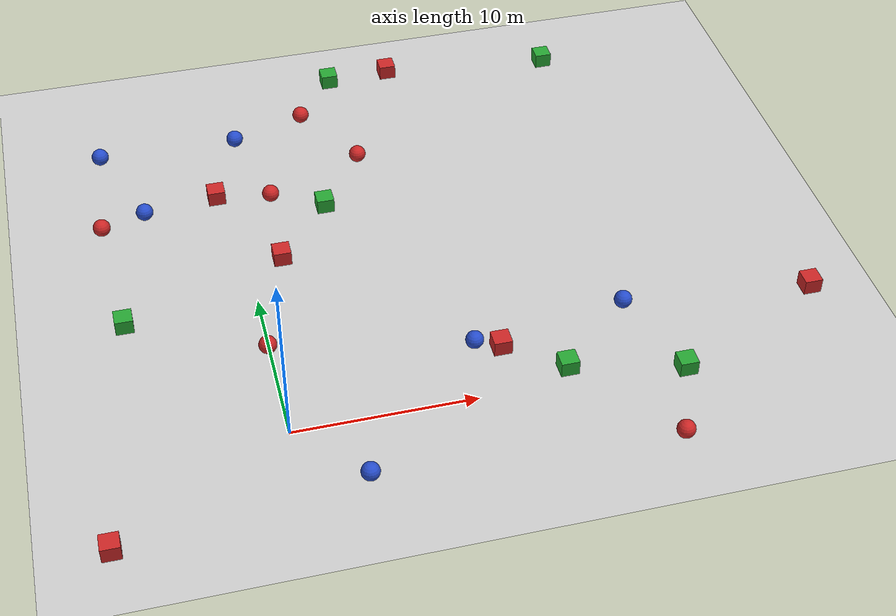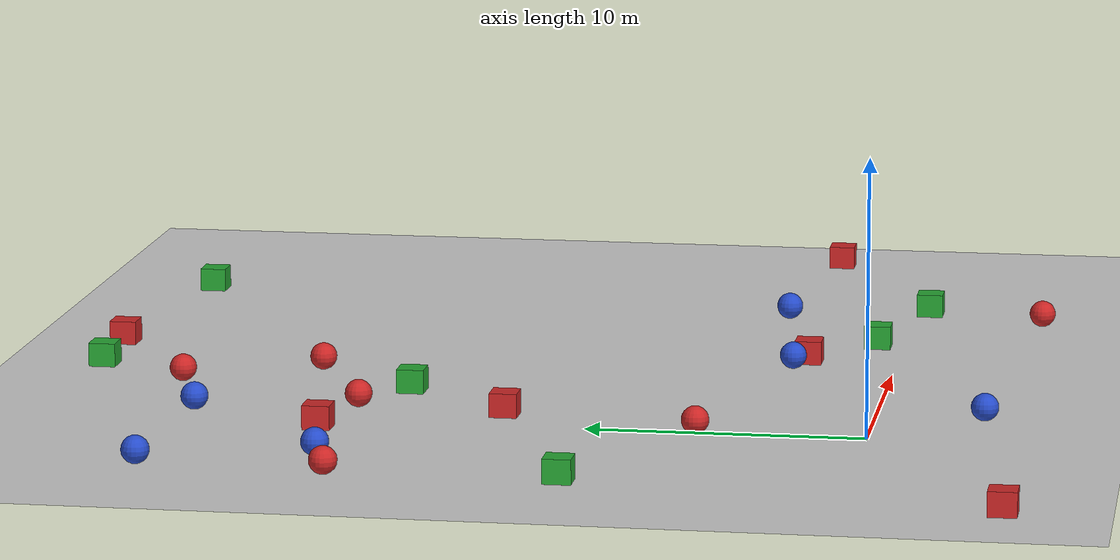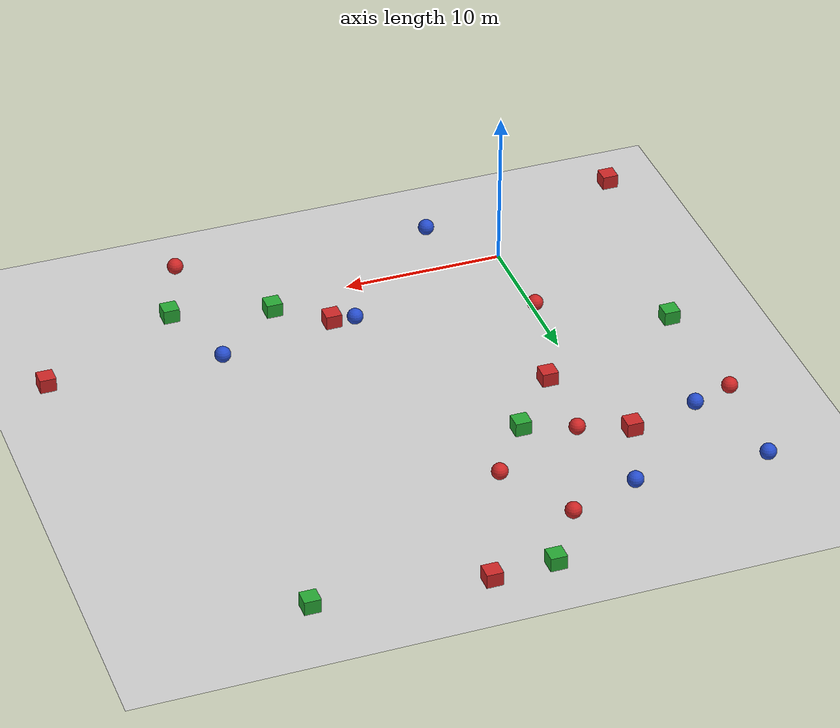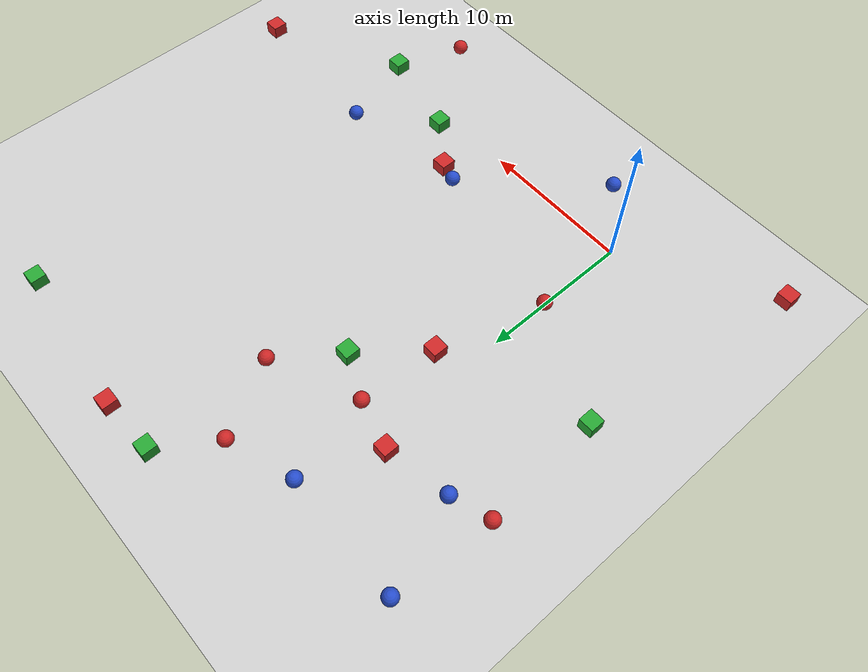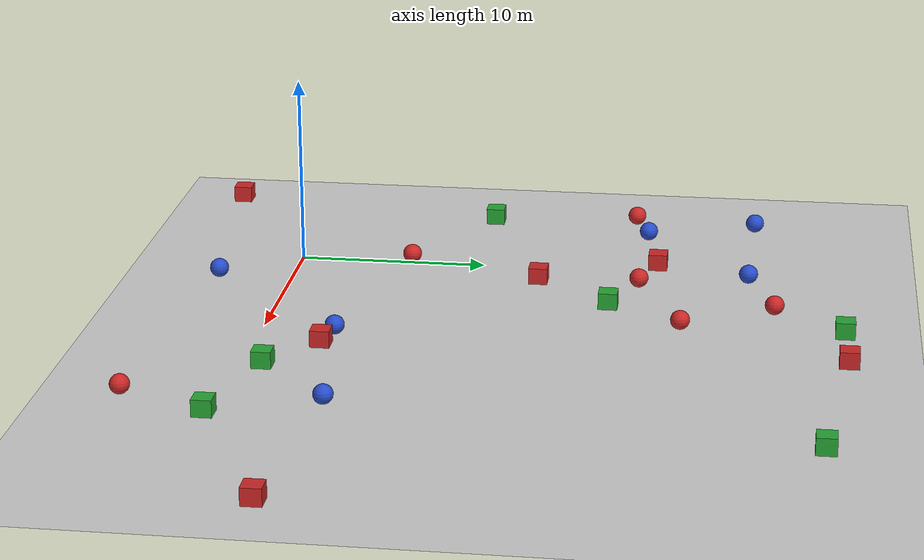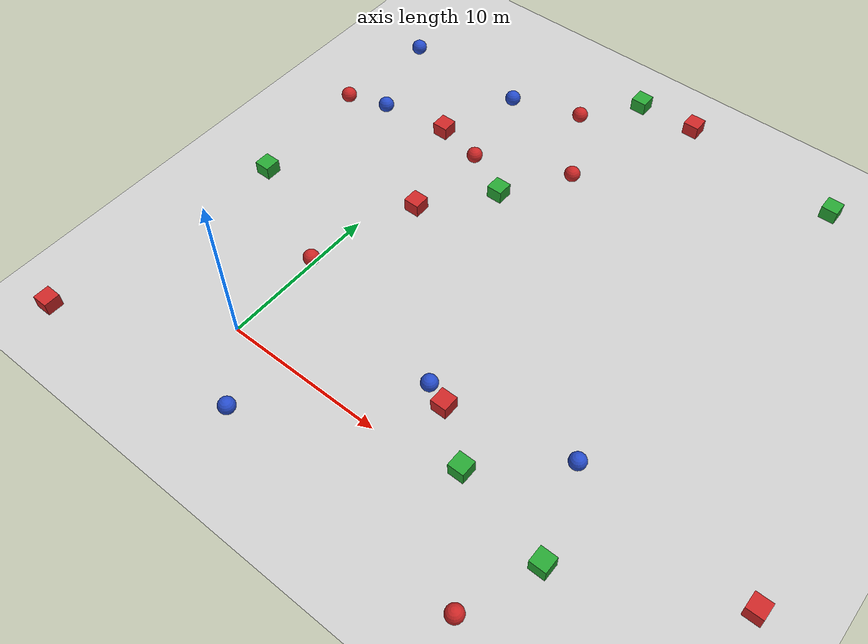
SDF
<sdf version="1.6">
 <world name="default">
  <light name="sun" type="directional">
   <pose>0 0 10 0 -0 0</pose>
   <diffuse>0.8 0.8 0.8 1</diffuse>
   <specular>0.1 0.1 0.1 1</specular>
   <attenuation>
    <range>1000</range>
    <constant>0.9</constant>
    <linear>0.01</linear>
    <quadratic>0.001</quadratic>
   </attenuation>
   <direction>-0.5 0.5 -1</direction>
  </light>
  <model name="ground_plane">
   <static>1</static>
   <link name="link">
    <collision name="collision">
     <geometry><plane><normal>0 0 1</normal><size>100 100</size></plane></geometry>
     <surface><friction><ode><mu>100</mu><mu2>50</mu2></ode></friction></surface>
    </collision>
    <visual name="visual">
     <cast_shadows>0</cast_shadows>
     <geometry><plane><normal>0 0 1</normal><size>100 100</size></plane></geometry>
     <material>
      <script><uri>file://media/materials/scripts/gazebo.material</uri><name>Gazebo/Grey</name></script>
     </material>
    </visual>
   </link>
  </model>
  <model name="unit_box_red_6">
   <pose>-0.972124179027 19.3967447052 0.329741 0 -0 0</pose>
   <link name="link">
    <inertial>
     <mass>1</mass>
     <inertia>
      <ixx>0.166667</ixx>
      <ixy>0</ixy>
      <ixz>0</ixz>
      <iyy>0.166667</iyy>
      <iyz>0</iyz>
      <izz>0.166667</izz>
     </inertia>
    </inertial>
    <collision name="collision"><geometry><box><size>1 1 0.999999</size></box></geometry></collision>
    <visual name="visual">
     <geometry><box><size>1 1 0.999999</size></box></geometry>
     <material>
      <script><name>Gazebo/Red</name><uri>file://media/materials/scripts/gazebo.material</uri></script>
     </material>
    </visual>
   </link>
  </model>
  <model name="unit_box_red_5">
   <pose>-9.47443882149 -5.40753129117 0.329741 0 -0 0</pose>
   <link name="link">
    <inertial>
     <mass>1</mass>
     <inertia>
      <ixx>0.166667</ixx>
      <ixy>0</ixy>
      <ixz>0</ixz>
      <iyy>0.166667</iyy>
      <iyz>0</iyz>
      <izz>0.166667</izz>
     </inertia>
    </inertial>
    <collision name="collision"><geometry><box><size>1 1 0.999999</size></box></geometry></collision>
    <visual name="visual">
     <geometry><box><size>1 1 0.999999</size></box></geometry>
     <material>
      <script><name>Gazebo/Red</name><uri>file://media/materials/scripts/gazebo.material</uri></script>
     </material>
    </visual>
   </link>
  </model>
  <model name="unit_box_red_4">
   <pose>30.0440862557 3.83223145465 0.329741 0 -0 0</pose>
   <link name="link">
    <inertial>
     <mass>1</mass>
     <inertia>
      <ixx>0.166667</ixx>
      <ixy>0</ixy>
      <ixz>0</ixz>
      <iyy>0.166667</iyy>
      <iyz>0</iyz>
      <izz>0.166667</izz>
     </inertia>
    </inertial>
    <collision name="collision"><geometry><box><size>1 1 0.999999</size></box></geometry></collision>
    <visual name="visual">
     <geometry><box><size>1 1 0.999999</size></box></geometry>
     <material>
      <script><name>Gazebo/Red</name><uri>file://media/materials/scripts/gazebo.material</uri></script>
     </material>
    </visual>
   </link>
  </model>
  <model name="unit_box_red_3">
   <pose>11.5799298118 29.5573891644 0.329741 0 -0 0</pose>
   <link name="link">
    <inertial>
     <mass>1</mass>
     <inertia>
      <ixx>0.166667</ixx>
      <ixy>0</ixy>
      <ixz>0</ixz>
      <iyy>0.166667</iyy>
      <iyz>0</iyz>
      <izz>0.166667</izz>
     </inertia>
    </inertial>
    <collision name="collision"><geometry><box><size>1 1 0.999999</size></box></geometry></collision>
    <visual name="visual">
     <geometry><box><size>1 1 0.999999</size></box></geometry>
     <material>
      <script><name>Gazebo/Red</name><uri>file://media/materials/scripts/gazebo.material</uri></script>
     </material>
    </visual>
   </link>
  </model>
  <model name="unit_box_red_2">
   <pose>1.88740144959 13.1705293032 0.329741 0 -0 0</pose>
   <link name="link">
    <inertial>
     <mass>1</mass>
     <inertia>
      <ixx>0.166667</ixx>
      <ixy>0</ixy>
      <ixz>0</ixz>
      <iyy>0.166667</iyy>
      <iyz>0</iyz>
      <izz>0.166667</izz>
     </inertia>
    </inertial>
    <collision name="collision"><geometry><box><size>1 1 0.999999</size></box></geometry></collision>
    <visual name="visual">
     <geometry><box><size>1 1 0.999999</size></box></geometry>
     <material>
      <script><name>Gazebo/Red</name><uri>file://media/materials/scripts/gazebo.material</uri></script>
     </material>
    </visual>
   </link>
  </model>
  <model name="unit_box_red_1">
   <pose>12.0660012438 3.31392304955 0.329741 0 -0 0</pose>
   <link name="link">
    <inertial>
     <mass>1</mass>
     <inertia>
      <ixx>0.166667</ixx>
      <ixy>0</ixy>
      <ixz>0</ixz>
      <iyy>0.166667</iyy>
      <iyz>0</iyz>
      <izz>0.166667</izz>
     </inertia>
    </inertial>
    <collision name="collision"><geometry><box><size>1 1 0.999999</size></box></geometry></collision>
    <visual name="visual">
     <geometry><box><size>1 1 0.999999</size></box></geometry>
     <material>
      <script><name>Gazebo/Red</name><uri>file://media/materials/scripts/gazebo.material</uri></script>
     </material>
    </visual>
   </link>
  </model>
  <model name="unit_sphere_red_6">
   <pose>2.16471946637 18.5668310258 0.5 0 -0 0</pose>
   <link name="link">
    <inertial>
     <mass>1</mass>
     <inertia><ixx>0.1</ixx><ixy>0</ixy><ixz>0</ixz><iyy>0.1</iyy><iyz>0</iyz><izz>0.1</izz></inertia>
    </inertial>
    <collision name="collision"><geometry><sphere><radius>0.5</radius></sphere></geometry></collision>
    <visual name="visual">
     <geometry><sphere><radius>0.5</radius></sphere></geometry>
     <material>
      <script><name>Gazebo/Red</name><uri>file://media/materials/scripts/gazebo.material</uri></script>
     </material>
    </visual>
   </link>
  </model>
  <model name="unit_sphere_red_5">
   <pose>19.4475166145 -4.99727756492 0.5 0 -0 0</pose>
   <link name="link">
    <inertial>
     <mass>1</mass>
     <inertia><ixx>0.1</ixx><ixy>0</ixy><ixz>0</ixz><iyy>0.1</iyy><iyz>0</iyz><izz>0.1</izz></inertia>
    </inertial>
    <collision name="collision"><geometry><sphere><radius>0.5</radius></sphere></geometry></collision>
    <visual name="visual">
     <geometry><sphere><radius>0.5</radius></sphere></geometry>
     <material>
      <script><name>Gazebo/Red</name><uri>file://media/materials/scripts/gazebo.material</uri></script>
     </material>
    </visual>
   </link>
  </model>
  <model name="unit_sphere_red_4">
   <pose>-7.81584530751 17.7931588115 0.5 0 -0 0</pose>
   <link name="link">
    <inertial>
     <mass>1</mass>
     <inertia><ixx>0.1</ixx><ixy>0</ixy><ixz>0</ixz><iyy>0.1</iyy><iyz>0</iyz><izz>0.1</izz></inertia>
    </inertial>
    <collision name="collision"><geometry><sphere><radius>0.5</radius></sphere></geometry></collision>
    <visual name="visual">
     <geometry><sphere><radius>0.5</radius></sphere></geometry>
     <material>
      <script><name>Gazebo/Red</name><uri>file://media/materials/scripts/gazebo.material</uri></script>
     </material>
    </visual>
   </link>
  </model>
  <model name="unit_sphere_red_3">
   <pose>-0.0698390932033 6.05013556762 0.5 0 -0 0</pose>
   <link name="link">
    <inertial>
     <mass>1</mass>
     <inertia><ixx>0.1</ixx><ixy>0</ixy><ixz>0</ixz><iyy>0.1</iyy><iyz>0</iyz><izz>0.1</izz></inertia>
    </inertial>
    <collision name="collision"><geometry><sphere><radius>0.5</radius></sphere></geometry></collision>
    <visual name="visual">
     <geometry><sphere><radius>0.5</radius></sphere></geometry>
     <material>
      <script><name>Gazebo/Red</name><uri>file://media/materials/scripts/gazebo.material</uri></script>
     </material>
    </visual>
   </link>
  </model>
  <model name="unit_sphere_red_2">
   <pose>5.26123957482 25.7853045232 0.5 0 -0 0</pose>
   <link name="link">
    <inertial>
     <mass>1</mass>
     <inertia><ixx>0.1</ixx><ixy>0</ixy><ixz>0</ixz><iyy>0.1</iyy><iyz>0</iyz><izz>0.1</izz></inertia>
    </inertial>
    <collision name="collision"><geometry><sphere><radius>0.5</radius></sphere></geometry></collision>
    <visual name="visual">
     <geometry><sphere><radius>0.5</radius></sphere></geometry>
     <material>
      <script><name>Gazebo/Red</name><uri>file://media/materials/scripts/gazebo.material</uri></script>
     </material>
    </visual>
   </link>
  </model>
  <model name="unit_sphere_red_1">
   <pose>7.90942098966 21.0513906795 0.5 0 -0 0</pose>
   <link name="link">
    <inertial>
     <mass>1</mass>
     <inertia><ixx>0.1</ixx><ixy>0</ixy><ixz>0</ixz><iyy>0.1</iyy><iyz>0</iyz><izz>0.1</izz></inertia>
    </inertial>
    <collision name="collision"><geometry><sphere><radius>0.5</radius></sphere></geometry></collision>
    <visual name="visual">
     <geometry><sphere><radius>0.5</radius></sphere></geometry>
     <material>
      <script><name>Gazebo/Red</name><uri>file://media/materials/scripts/gazebo.material</uri></script>
     </material>
    </visual>
   </link>
  </model>
  <model name="unit_box_green_6">
   <pose>21.1452947566 -0.512571100963 0.329741 0 -0 0</pose>
   <link name="link">
    <inertial>
     <mass>1</mass>
     <inertia>
      <ixx>0.166667</ixx>
      <ixy>0</ixy>
      <ixz>0</ixz>
      <iyy>0.166667</iyy>
      <iyz>0</iyz>
      <izz>0.166667</izz>
     </inertia>
    </inertial>
    <collision name="collision"><geometry><box><size>1 1 0.999999</size></box></geometry></collision>
    <visual name="visual">
     <geometry><box><size>1 1 0.999999</size></box></geometry>
     <material>
      <script><name>Gazebo/Green</name><uri>file://media/materials/scripts/gazebo.material</uri></script>
     </material>
    </visual>
   </link>
  </model>
  <model name="unit_box_green_5">
   <pose>-7.36413348604 9.75440054723 0.329741 0 -0 0</pose>
   <link name="link">
    <inertial>
     <mass>1</mass>
     <inertia>
      <ixx>0.166667</ixx>
      <ixy>0</ixy>
      <ixz>0</ixz>
      <iyy>0.166667</iyy>
      <iyz>0</iyz>
      <izz>0.166667</izz>
     </inertia>
    </inertial>
    <collision name="collision"><geometry><box><size>1 1 0.999999</size></box></geometry></collision>
    <visual name="visual">
     <geometry><box><size>1 1 0.999999</size></box></geometry>
     <material>
      <script><name>Gazebo/Green</name><uri>file://media/materials/scripts/gazebo.material</uri></script>
     </material>
    </visual>
   </link>
  </model>
  <model name="unit_box_green_4">
   <pose>15.0763055395 0.990072330552 0.329741 0 -0 0</pose>
   <link name="link">
    <inertial>
     <mass>1</mass>
     <inertia>
      <ixx>0.166667</ixx>
      <ixy>0</ixy>
      <ixz>0</ixz>
      <iyy>0.166667</iyy>
      <iyz>0</iyz>
      <izz>0.166667</izz>
     </inertia>
    </inertial>
    <collision name="collision"><geometry><box><size>1 1 0.999999</size></box></geometry></collision>
    <visual name="visual">
     <geometry><box><size>1 1 0.999999</size></box></geometry>
     <material>
      <script><name>Gazebo/Green</name><uri>file://media/materials/scripts/gazebo.material</uri></script>
     </material>
    </visual>
   </link>
  </model>
  <model name="unit_box_green_3">
   <pose>7.73389349916 29.3906880053 0.329741 0 -0 0</pose>
   <link name="link">
    <inertial>
     <mass>1</mass>
     <inertia>
      <ixx>0.166667</ixx>
      <ixy>0</ixy>
      <ixz>0</ixz>
      <iyy>0.166667</iyy>
      <iyz>0</iyz>
      <izz>0.166667</izz>
     </inertia>
    </inertial>
    <collision name="collision"><geometry><box><size>1 1 0.999999</size></box></geometry></collision>
    <visual name="visual">
     <geometry><box><size>1 1 0.999999</size></box></geometry>
     <material>
      <script><name>Gazebo/Green</name><uri>file://media/materials/scripts/gazebo.material</uri></script>
     </material>
    </visual>
   </link>
  </model>
  <model name="unit_box_green_2">
   <pose>21.7814671584 28.4062787808 0.329741 0 -0 0</pose>
   <link name="link">
    <inertial>
     <mass>1</mass>
     <inertia>
      <ixx>0.166667</ixx>
      <ixy>0</ixy>
      <ixz>0</ixz>
      <iyy>0.166667</iyy>
      <iyz>0</iyz>
      <izz>0.166667</izz>
     </inertia>
    </inertial>
    <collision name="collision"><geometry><box><size>1 1 0.999999</size></box></geometry></collision>
    <visual name="visual">
     <geometry><box><size>1 1 0.999999</size></box></geometry>
     <material>
      <script><name>Gazebo/Green</name><uri>file://media/materials/scripts/gazebo.material</uri></script>
     </material>
    </visual>
   </link>
  </model>
  <model name="unit_box_green_1">
   <pose>5.12826922486 17.1665504369 0.329741 0 -0 0</pose>
   <link name="link">
    <inertial>
     <mass>1</mass>
     <inertia>
      <ixx>0.166667</ixx>
      <ixy>0</ixy>
      <ixz>0</ixz>
      <iyy>0.166667</iyy>
      <iyz>0</iyz>
      <izz>0.166667</izz>
     </inertia>
    </inertial>
    <collision name="collision"><geometry><box><size>1 1 0.999999</size></box></geometry></collision>
    <visual name="visual">
     <geometry><box><size>1 1 0.999999</size></box></geometry>
     <material>
      <script><name>Gazebo/Green</name><uri>file://media/materials/scripts/gazebo.material</uri></script>
     </material>
    </visual>
   </link>
  </model>
  <model name="unit_sphere_blue_6">
   <pose>3.39612662702 -3.89702491116 0.5 0 -0 0</pose>
   <link name="link">
    <inertial>
     <mass>1</mass>
     <inertia><ixx>0.1</ixx><ixy>0</ixy><ixz>0</ixz><iyy>0.1</iyy><iyz>0</iyz><izz>0.1</izz></inertia>
    </inertial>
    <collision name="collision"><geometry><sphere><radius>0.5</radius></sphere></geometry></collision>
    <visual name="visual">
     <geometry><sphere><radius>0.5</radius></sphere></geometry>
     <material>
      <script><name>Gazebo/Blue</name><uri>file://media/materials/scripts/gazebo.material</uri></script>
     </material>
    </visual>
   </link>
  </model>
  <model name="unit_sphere_blue_5">
   <pose>-7.31774318427 24.4669322833 0.5 0 -0 0</pose>
   <link name="link">
    <inertial>
     <mass>1</mass>
     <inertia><ixx>0.1</ixx><ixy>0</ixy><ixz>0</ixz><iyy>0.1</iyy><iyz>0</iyz><izz>0.1</izz></inertia>
    </inertial>
    <collision name="collision"><geometry><sphere><radius>0.5</radius></sphere></geometry></collision>
    <visual name="visual">
     <geometry><sphere><radius>0.5</radius></sphere></geometry>
     <material>
      <script><name>Gazebo/Blue</name><uri>file://media/materials/scripts/gazebo.material</uri></script>
     </material>
    </visual>
   </link>
  </model>
  <model name="unit_sphere_blue_4">
   <pose>19.4365217328 4.85063292738 0.5 0 -0 0</pose>
   <link name="link">
    <inertial>
     <mass>1</mass>
     <inertia><ixx>0.1</ixx><ixy>0</ixy><ixz>0</ixz><iyy>0.1</iyy><iyz>0</iyz><izz>0.1</izz></inertia>
    </inertial>
    <collision name="collision"><geometry><sphere><radius>0.5</radius></sphere></geometry></collision>
    <visual name="visual">
     <geometry><sphere><radius>0.5</radius></sphere></geometry>
     <material>
      <script><name>Gazebo/Blue</name><uri>file://media/materials/scripts/gazebo.material</uri></script>
     </material>
    </visual>
   </link>
  </model>
  <model name="unit_sphere_blue_3">
   <pose>-5.2607179033 18.6136818131 0.5 0 -0 0</pose>
   <link name="link">
    <inertial>
     <mass>1</mass>
     <inertia><ixx>0.1</ixx><ixy>0</ixy><ixz>0</ixz><iyy>0.1</iyy><iyz>0</iyz><izz>0.1</izz></inertia>
    </inertial>
    <collision name="collision"><geometry><sphere><radius>0.5</radius></sphere></geometry></collision>
    <visual name="visual">
     <geometry><sphere><radius>0.5</radius></sphere></geometry>
     <material>
      <script><name>Gazebo/Blue</name><uri>file://media/materials/scripts/gazebo.material</uri></script>
     </material>
    </visual>
   </link>
  </model>
  <model name="unit_sphere_blue_2">
   <pose>0.878332576631 24.3244215769 0.5 0 -0 0</pose>
   <link name="link">
    <inertial>
     <mass>1</mass>
     <inertia><ixx>0.1</ixx><ixy>0</ixy><ixz>0</ixz><iyy>0.1</iyy><iyz>0</iyz><izz>0.1</izz></inertia>
    </inertial>
    <collision name="collision"><geometry><sphere><radius>0.5</radius></sphere></geometry></collision>
    <visual name="visual">
     <geometry><sphere><radius>0.5</radius></sphere></geometry>
     <material>
      <script><name>Gazebo/Blue</name><uri>file://media/materials/scripts/gazebo.material</uri></script>
     </material>
    </visual>
   </link>
  </model>
  <model name="unit_sphere_blue_1">
   <pose>10.7189729324 3.76361035319 0.5 0 -0 0</pose>
   <link name="link">
    <inertial>
     <mass>1</mass>
     <inertia><ixx>0.1</ixx><ixy>0</ixy><ixz>0</ixz><iyy>0.1</iyy><iyz>0</iyz><izz>0.1</izz></inertia>
    </inertial>
    <collision name="collision"><geometry><sphere><radius>0.5</radius></sphere></geometry></collision>
    <visual name="visual">
     <geometry><sphere><radius>0.5</radius></sphere></geometry>
     <material>
      <script><name>Gazebo/Blue</name><uri>file://media/materials/scripts/gazebo.material</uri></script>
     </material>
    </visual>
   </link>
  </model>
  <gravity>0 0 -9.8</gravity>
  <magnetic_field>6e-06 2.3e-05 -4.2e-05</magnetic_field>
  <atmosphere type="adiabatic"/>
  <physics default="0" name="default_physics" type="ode">
   <max_step_size>0.001</max_step_size>
   <real_time_factor>1</real_time_factor>
   <real_time_update_rate>1000</real_time_update_rate>
  </physics>
  <scene><ambient>0.4 0.4 0.4 1</ambient><background>0.7 0.7 0.7 1</background><shadows>1</shadows></scene>
  <spherical_coordinates>
   <surface_model>EARTH_WGS84</surface_model>
   <latitude_deg>0</latitude_deg>
   <longitude_deg>0</longitude_deg>
   <elevation>0</elevation>
   <heading_deg>0</heading_deg>
  </spherical_coordinates>
 </world>
</sdf>
